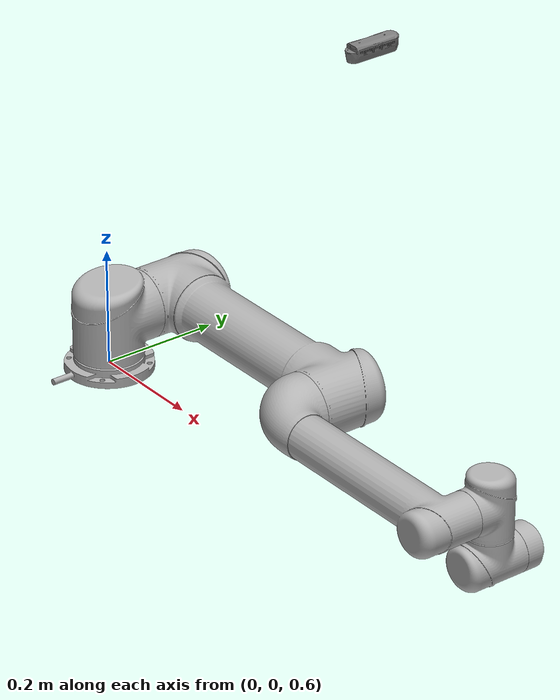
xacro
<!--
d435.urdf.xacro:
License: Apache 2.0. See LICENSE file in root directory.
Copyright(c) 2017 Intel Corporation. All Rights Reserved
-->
<?xml version="1.0"?>
<robot xmlns:xacro="http://www.ros.org/wiki/xacro"
       name="ur5" >
  <xacro:arg name="hardwareInterface" default="PositionJointInterface" />

  <!-- common stuff -->
  <xacro:include filename="$(find ur5_description)/urdf/common.gazebo.xacro" />

  <!-- ur5 -->
  <xacro:include filename="$(find ur5_description)/urdf/ur5.urdf.xacro" />

  <!-- arm -->
  <xacro:ur5_robot prefix="" joint_limited="true"
                   hardwareInterface="$(arg hardwareInterface)"/>

  <!-- camera -->
  <xacro:include filename="$(find ur5_description)/urdf/d435.urdf.xacro" />

  <link name="world" />

  <joint name="world_joint" type="fixed">
    <parent link="world" />
    <child link = "base_link" />
    <origin xyz="0.0 0.0 0.594" rpy="0.0 0.0 0.0" />
  </joint>

  <!-- Camera Link -->
  <sensor_d435 name="camera" topics_ns="camera" parent="world" >
    <origin xyz="0.65 0.0 1.4" rpy="0 1.575796 0"/>
  </sensor_d435>

</robot>

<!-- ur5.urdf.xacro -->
<robot xmlns:xacro="http://www.ros.org/wiki/xacro">

  <xacro:include filename="$(find ur5_description)/urdf/ur.transmission.xacro" />
  <xacro:include filename="$(find ur5_description)/urdf/ur.gazebo.xacro" />

  <!-- Inertia parameters -->
  <xacro:property name="base_mass" value="4.0" />  <!-- This mass might be incorrect -->
  <xacro:property name="shoulder_mass" value="3.7000" />
  <xacro:property name="upper_arm_mass" value="8.3930" />
  <xacro:property name="forearm_mass" value="2.2750" />
  <xacro:property name="wrist_1_mass" value="1.2190" />
  <xacro:property name="wrist_2_mass" value="1.2190" />
  <xacro:property name="wrist_3_mass" value="0.1879" />

  <xacro:property name="shoulder_cog" value="0.0 0.00193 -0.02561" />
  <xacro:property name="upper_arm_cog" value="0.0 -0.024201 0.2125" />
  <xacro:property name="forearm_cog" value="0.0 0.0265 0.11993" />
  <xacro:property name="wrist_1_cog" value="0.0 0.110949 0.01634" />
  <xacro:property name="wrist_2_cog" value="0.0 0.0018 0.11099" />
  <xacro:property name="wrist_3_cog" value="0.0 0.001159 0.0" />

  <!-- Kinematic model -->
  <!-- Properties from urcontrol.conf -->
  <xacro:property name="ur5_d1" value="0.089159" />
  <xacro:property name="ur5_a2" value="-0.42500" />
  <xacro:property name="ur5_a3" value="-0.39225" />
  <xacro:property name="ur5_d4" value="0.10915" />
  <xacro:property name="ur5_d5" value="0.09465" />
  <xacro:property name="ur5_d6" value="0.0823" />

  <!-- Arbitrary offsets for shoulder/elbow joints -->
  <xacro:property name="shoulder_offset" value="0.13585" />  <!-- measured from model -->
  <xacro:property name="elbow_offset" value="-0.1197" /> <!-- measured from model -->

  <!-- link lengths used in model -->
  <xacro:property name="shoulder_height" value="${ur5_d1}" />
  <xacro:property name="upper_arm_length" value="${-ur5_a2}" />
  <xacro:property name="forearm_length" value="${-ur5_a3}" />
  <xacro:property name="wrist_1_length" value="${ur5_d4 - elbow_offset - shoulder_offset}" />
  <xacro:property name="wrist_2_length" value="${ur5_d5}" />
  <xacro:property name="wrist_3_length" value="${ur5_d6}" />
  <!--property name="shoulder_height" value="0.089159" /-->
  <!--property name="shoulder_offset" value="0.13585" /-->  <!-- shoulder_offset - elbow_offset + wrist_1_length = 0.10915 -->
  <!--property name="upper_arm_length" value="0.42500" /-->
  <!--property name="elbow_offset" value="0.1197" /-->       <!-- CAD measured -->
  <!--property name="forearm_length" value="0.39225" /-->
  <!--property name="wrist_1_length" value="0.093" /-->     <!-- CAD measured -->
  <!--property name="wrist_2_length" value="0.09465" /-->   <!-- In CAD this distance is 0.930, but in the spec it is 0.09465 -->
  <!--property name="wrist_3_length" value="0.0823" /-->

  <xacro:property name="shoulder_radius" value="0.060" />   <!-- manually measured -->
  <xacro:property name="upper_arm_radius" value="0.054" />  <!-- manually measured -->
  <xacro:property name="elbow_radius" value="0.060" />      <!-- manually measured -->
  <xacro:property name="forearm_radius" value="0.040" />    <!-- manually measured -->
  <xacro:property name="wrist_radius" value="0.045" />      <!-- manually measured -->

  <xacro:macro name="cylinder_inertial" params="radius length mass *origin">
    <inertial>
      <mass value="${mass}" />
      <xacro:insert_block name="origin" />
      <inertia ixx="${0.0833333 * mass * (3 * radius * radius + length * length)}" ixy="0.0" ixz="0.0"
        iyy="${0.0833333 * mass * (3 * radius * radius + length * length)}" iyz="0.0"
        izz="${0.5 * mass * radius * radius}" />
    </inertial>
  </xacro:macro>

  <xacro:macro name="ur5_robot" params="prefix joint_limited hardwareInterface">

    <link name="${prefix}base_link" >
      <visual>
        <geometry>
          <mesh filename="package://ur5_description/meshes/ur5/visual/base.dae" />
        </geometry>
        <material name="LightGrey">
          <color rgba="0.7 0.7 0.7 1.0"/>
        </material>
      </visual>
      <collision>
        <geometry>
          <mesh filename="package://ur5_description/meshes/ur5/collision/base.stl" />
        </geometry>
      </collision>
      <xacro:cylinder_inertial radius="0.06" length="0.05" mass="${base_mass}">
        <origin xyz="0.0 0.0 0.0" rpy="0 0 0" />
      </xacro:cylinder_inertial>
    </link>

    <joint name="${prefix}shoulder_pan_joint" type="revolute">
      <parent link="${prefix}base_link" />
      <child link = "${prefix}shoulder_link" />
      <origin xyz="0.0 0.0 ${shoulder_height}" rpy="0.0 0.0 0.0" />
      <axis xyz="0 0 1" />
      <xacro:unless value="${joint_limited}">
        <limit lower="${-2.0 * pi}" upper="${2.0 * pi}" effort="150.0" velocity="3.15"/>
      </xacro:unless>
      <xacro:if value="${joint_limited}">
        <limit lower="${-pi}" upper="${pi}" effort="1500.0" velocity="30.15"/>
      </xacro:if>
      <dynamics damping="0.0" friction="0.0"/>
    </joint>

    <link name="${prefix}shoulder_link">
      <visual>
        <geometry>
          <mesh filename="package://ur5_description/meshes/ur5/visual/shoulder.dae" />
        </geometry>
        <material name="LightGrey">
          <color rgba="0.7 0.7 0.7 1.0"/>
        </material>
      </visual>
      <collision>
        <geometry>
          <mesh filename="package://ur5_description/meshes/ur5/collision/shoulder.stl" />
        </geometry>
      </collision>
      <xacro:cylinder_inertial radius="0.06" length="0.15" mass="${shoulder_mass}">
        <origin xyz="0.0 0.0 0.0" rpy="0 0 0" />
      </xacro:cylinder_inertial>
    </link>

    <joint name="${prefix}shoulder_lift_joint" type="revolute">
      <parent link="${prefix}shoulder_link" />
      <child link = "${prefix}upper_arm_link" />
      <origin xyz="0.0 ${shoulder_offset} 0.0" rpy="0.0 ${pi / 2.0} 0.0" />
      <axis xyz="0 1 0" />
      <xacro:unless value="${joint_limited}">
        <limit lower="${-2.0 * pi}" upper="${2.0 * pi}" effort="150.0" velocity="3.15"/>
      </xacro:unless>
      <xacro:if value="${joint_limited}">
        <limit lower="${-pi}" upper="${pi}" effort="150.0" velocity="3.15"/>
      </xacro:if>
      <dynamics damping="0.0" friction="0.0"/>
    </joint>

    <link name="${prefix}upper_arm_link">
      <visual>
        <geometry>
          <mesh filename="package://ur5_description/meshes/ur5/visual/upperarm.dae" />
        </geometry>
        <material name="LightGrey">
          <color rgba="0.7 0.7 0.7 1.0"/>
        </material>
      </visual>
      <collision>
        <geometry>
          <mesh filename="package://ur5_description/meshes/ur5/collision/upperarm.stl" />
        </geometry>
      </collision>
      <xacro:cylinder_inertial radius="0.06" length="0.56" mass="${upper_arm_mass}">
        <origin xyz="0.0 0.0 0.28" rpy="0 0 0" />
      </xacro:cylinder_inertial>
    </link>

    <joint name="${prefix}elbow_joint" type="revolute">
      <parent link="${prefix}upper_arm_link" />
      <child link = "${prefix}forearm_link" />
      <origin xyz="0.0 ${elbow_offset} ${upper_arm_length}" rpy="0.0 0.0 0.0" />
      <axis xyz="0 1 0" />
      <xacro:unless value="${joint_limited}">
        <limit lower="${-pi}" upper="${pi}" effort="150.0" velocity="3.15"/>
      </xacro:unless>
      <xacro:if value="${joint_limited}">
        <limit lower="${-pi}" upper="${pi}" effort="150.0" velocity="3.15"/>
      </xacro:if>
      <dynamics damping="0.0" friction="0.0"/>
    </joint>

    <link name="${prefix}forearm_link">
      <visual>
        <geometry>
          <mesh filename="package://ur5_description/meshes/ur5/visual/forearm.dae" />
        </geometry>
        <material name="LightGrey">
          <color rgba="0.7 0.7 0.7 1.0"/>
        </material>
      </visual>
      <collision>
        <geometry>
          <mesh filename="package://ur5_description/meshes/ur5/collision/forearm.stl" />
        </geometry>
      </collision>
      <xacro:cylinder_inertial radius="0.06" length="0.5" mass="${forearm_mass}">
        <origin xyz="0.0 0.0 0.25" rpy="0 0 0" />
      </xacro:cylinder_inertial>
    </link>

    <joint name="${prefix}wrist_1_joint" type="revolute">
      <parent link="${prefix}forearm_link" />
      <child link = "${prefix}wrist_1_link" />
      <origin xyz="0.0 0.0 ${forearm_length}" rpy="0.0 ${pi / 2.0} 0.0" />
      <axis xyz="0 1 0" />
      <xacro:unless value="${joint_limited}">
        <limit lower="${-2.0 * pi}" upper="${2.0 * pi}" effort="28.0" velocity="3.2"/>
      </xacro:unless>
      <xacro:if value="${joint_limited}">
        <limit lower="${-pi}" upper="${pi}" effort="28.0" velocity="3.2"/>
      </xacro:if>
      <dynamics damping="0.0" friction="0.0"/>
    </joint>

    <link name="${prefix}wrist_1_link">
      <visual>
        <geometry>
          <mesh filename="package://ur5_description/meshes/ur5/visual/wrist1.dae" />
        </geometry>
        <material name="LightGrey">
          <color rgba="0.7 0.7 0.7 1.0"/>
        </material>
      </visual>
      <collision>
        <geometry>
          <mesh filename="package://ur5_description/meshes/ur5/collision/wrist1.stl" />
        </geometry>
      </collision>
      <xacro:cylinder_inertial radius="0.6" length="0.12" mass="${wrist_1_mass}">
        <origin xyz="0.0 0.0 0.0" rpy="0 0 0" />
      </xacro:cylinder_inertial>
    </link>

    <joint name="${prefix}wrist_2_joint" type="revolute">
      <parent link="${prefix}wrist_1_link" />
      <child link = "${prefix}wrist_2_link" />
      <origin xyz="0.0 ${wrist_1_length} 0.0" rpy="0.0 0.0 0.0" />
      <axis xyz="0 0 1" />
      <xacro:unless value="${joint_limited}">
        <limit lower="${-2.0 * pi}" upper="${2.0 * pi}" effort="28.0" velocity="3.2"/>
      </xacro:unless>
      <xacro:if value="${joint_limited}">
        <limit lower="${-pi}" upper="${pi}" effort="28.0" velocity="3.2"/>
      </xacro:if>
      <dynamics damping="0.0" friction="0.0"/>
    </joint>

    <link name="${prefix}wrist_2_link">
      <visual>
        <geometry>
          <mesh filename="package://ur5_description/meshes/ur5/visual/wrist2.dae" />
        </geometry>
        <material name="LightGrey">
          <color rgba="0.7 0.7 0.7 1.0"/>
        </material>
      </visual>
      <collision>
        <geometry>
          <mesh filename="package://ur5_description/meshes/ur5/collision/wrist2.stl" />
        </geometry>
      </collision>
      <xacro:cylinder_inertial radius="0.6" length="0.12" mass="${wrist_2_mass}">
        <origin xyz="0.0 0.0 0.0" rpy="0 0 0" />
      </xacro:cylinder_inertial>
    </link>

    <joint name="${prefix}wrist_3_joint" type="revolute">
      <parent link="${prefix}wrist_2_link" />
      <child link = "${prefix}wrist_3_link" />
      <origin xyz="0.0 0.0 ${wrist_2_length}" rpy="0.0 0.0 0.0" />
      <axis xyz="0 1 0" />
      <xacro:unless value="${joint_limited}">
        <limit lower="${-2.0 * pi}" upper="${2.0 * pi}" effort="28.0" velocity="3.2"/>
      </xacro:unless>
      <xacro:if value="${joint_limited}">
        <limit lower="${-pi}" upper="${pi}" effort="28.0" velocity="3.2"/>
      </xacro:if>
      <dynamics damping="0.0" friction="0.0"/>
    </joint>

    <link name="${prefix}wrist_3_link">
      <visual>
        <geometry>
          <mesh filename="package://ur5_description/meshes/ur5/visual/wrist3.dae" />
        </geometry>
        <material name="LightGrey">
          <color rgba="0.7 0.7 0.7 1.0"/>
        </material>
      </visual>
      <collision>
        <geometry>
          <mesh filename="package://ur5_description/meshes/ur5/collision/wrist3.stl" />
        </geometry>
      </collision>
      <xacro:cylinder_inertial radius="0.6" length="0.12" mass="${wrist_3_mass}">
        <origin xyz="0.0 0.0 0.0" rpy="0 0 0" />
      </xacro:cylinder_inertial>
    </link>

    <joint name="${prefix}ee_fixed_joint" type="fixed">
      <parent link="${prefix}wrist_3_link" />
      <child link = "${prefix}ee_link" />
      <origin xyz="0.0 ${wrist_3_length} 0.0" rpy="0.0 0.0 ${pi/2.0}" />
    </joint>

    <link name="${prefix}ee_link">
      <collision>
        <geometry>
          <box size="0.01 0.01 0.01"/>
        </geometry>
        <origin rpy="0 0 0" xyz="-0.01 0 0"/>
      </collision>
    </link>

    <xacro:ur_arm_transmission prefix="${prefix}" hardwareInterface="${hardwareInterface}" />
    <xacro:ur_arm_gazebo prefix="${prefix}" />

    <!-- ROS base_link to UR 'Base' Coordinates transform -->
    <link name="${prefix}base"/>
    <joint name="${prefix}base_link-base_fixed_joint" type="fixed">
      <!-- NOTE: this rotation is only needed as long as base_link itself is
                 not corrected wrt the real robot (ie: rotated over 180
                 degrees)
      -->
      <origin xyz="0 0 0" rpy="0 0 ${-pi}"/>
      <parent link="${prefix}base_link"/>
      <child link="${prefix}base"/>
    </joint>

    <!-- Frame coincident with all-zeros TCP on UR controller -->
    <link name="${prefix}tool0"/>
    <joint name="${prefix}wrist_3_link-tool0_fixed_joint" type="fixed">
      <origin xyz="0 ${wrist_3_length} 0" rpy="${pi/-2.0} 0 0"/>
      <parent link="${prefix}wrist_3_link"/>
      <child link="${prefix}tool0"/>
    </joint>

  </xacro:macro>
</robot>

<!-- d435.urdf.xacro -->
<robot name="sensor_d435" xmlns:xacro="http://ros.org/wiki/xacro">
  <!--File includes-->
  <xacro:include filename="$(find ur5_description)/urdf/d435.gazebo.xacro"/>

  <xacro:macro name="sensor_d435" params="name:=camera topics_ns:=camera parent *origin publish_pointcloud:=true">
    <xacro:property name="M_PI" value="3.1415926535897931" />

    <!-- The following values are approximate, and the camera node
     publishing TF values with actual calibrated camera extrinsic values -->
    <xacro:property name="d435_cam_depth_to_left_ir_offset" value="0.0"/>
    <xacro:property name="d435_cam_depth_to_right_ir_offset" value="-0.050"/>
    <xacro:property name="d435_cam_depth_to_color_offset" value="0.015"/>

    <!-- The following values model the aluminum peripherial case for the
    D435 camera, with the camera joint represented by the actual
    peripherial camera tripod mount -->
    <xacro:property name="d435_cam_width" value="0.090"/>
    <xacro:property name="d435_cam_height" value="0.025"/>
    <xacro:property name="d435_cam_depth" value="0.02505"/>
    <xacro:property name="d435_cam_mount_from_center_offset" value="0.0149"/>

    <!-- The following offset is relative the the physical D435 camera peripherial
    camera tripod mount -->
    <xacro:property name="d435_cam_depth_px" value="${d435_cam_mount_from_center_offset}"/>
    <xacro:property name="d435_cam_depth_py" value="0.0175"/>
    <xacro:property name="d435_cam_depth_pz" value="${d435_cam_height/2}"/>

    <material name="${name}_aluminum">
    <color rgba="0.5 0.5 0.5 1"/>
    </material>

    <!-- camera body, with origin at bottom screw mount -->
    <joint name="${name}_joint" type="fixed">
      <xacro:insert_block name="origin" />
      <parent link="${parent}"/>
      <child link="${name}_bottom_screw_frame" />
    </joint>
    <link name="${name}_bottom_screw_frame"/>

    <joint name="${name}_link_joint" type="fixed">
      <origin xyz="0 ${d435_cam_depth_py} ${d435_cam_depth_pz}" rpy="0 0 0"/>
      <parent link="${name}_bottom_screw_frame"/>
      <child link="${name}_link" />
    </joint>

    <link name="${name}_link">
      <visual>
      <origin xyz="${d435_cam_mount_from_center_offset} ${-d435_cam_depth_py} 0" rpy="${M_PI/2} 0 ${M_PI/2}"/>
        <geometry>
          <mesh filename="package://realsense2_description/meshes/d435.dae" />
        </geometry>
        <material name="${name}_aluminum"/>
      </visual>
      <collision>
        <origin xyz="0 ${-d435_cam_depth_py} 0" rpy="0 0 0"/>
        <geometry>
        <box size="${d435_cam_depth} ${d435_cam_width} ${d435_cam_height}"/>
        </geometry>
      </collision>
      <inertial>
        <!-- The following are not reliable values, and should not be used for modeling -->
        <mass value="0.564" />
        <origin xyz="0 0 0" />
        <inertia ixx="0.003881243" ixy="0.0" ixz="0.0" iyy="0.000498940" iyz="0.0" izz="0.003879257" />
      </inertial>
    </link>

    <!-- camera depth joints and links -->
    <joint name="${name}_depth_joint" type="fixed">
      <origin xyz="0 0 0" rpy="0 0 0"/>
      <parent link="${name}_link"/>
      <child link="${name}_depth_frame" />
    </joint>
    <link name="${name}_depth_frame"/>

    <joint name="${name}_depth_optical_joint" type="fixed">
      <origin xyz="0 0 0" rpy="${-M_PI/2} 0 ${-M_PI/2}" />
      <parent link="${name}_depth_frame" />
      <child link="${name}_depth_optical_frame" />
    </joint>
    <link name="${name}_depth_optical_frame"/>

    <!-- camera left IR joints and links -->
    <joint name="${name}_left_ir_joint" type="fixed">
      <origin xyz="0 ${d435_cam_depth_to_left_ir_offset} 0" rpy="0 0 0" />
      <parent link="${name}_depth_frame" />
      <child link="${name}_left_ir_frame" />
    </joint>
    <link name="${name}_left_ir_frame"/>

    <joint name="${name}_left_ir_optical_joint" type="fixed">
      <origin xyz="0 0 0" rpy="${-M_PI/2} 0 ${-M_PI/2}" />
      <parent link="${name}_left_ir_frame" />
      <child link="${name}_left_ir_optical_frame" />
    </joint>
    <link name="${name}_left_ir_optical_frame"/>

    <!-- camera right IR joints and links -->
    <joint name="${name}_right_ir_joint" type="fixed">
      <origin xyz="0 ${d435_cam_depth_to_right_ir_offset} 0" rpy="0 0 0" />
      <parent link="${name}_depth_frame" />
      <child link="${name}_right_ir_frame" />
    </joint>
    <link name="${name}_right_ir_frame"/>

    <joint name="${name}_right_ir_optical_joint" type="fixed">
      <origin xyz="0 0 0" rpy="${-M_PI/2} 0 ${-M_PI/2}" />
      <parent link="${name}_right_ir_frame" />
      <child link="${name}_right_ir_optical_frame" />
    </joint>
    <link name="${name}_right_ir_optical_frame"/>

    <!-- camera color joints and links -->
    <joint name="${name}_color_joint" type="fixed">
      <origin xyz="0 ${d435_cam_depth_to_color_offset} 0" rpy="0 0 0" />
      <parent link="${name}_depth_frame" />
      <child link="${name}_color_frame" />
    </joint>
    <link name="${name}_color_frame"/>

    <joint name="${name}_color_optical_joint" type="fixed">
      <origin xyz="0 0 0" rpy="${-M_PI/2} 0 ${-M_PI/2}" />
      <parent link="${name}_color_frame" />
      <child link="${name}_color_optical_frame" />
    </joint>
    <link name="${name}_color_optical_frame"/>

    <!-- Realsense Gazebo Plugin -->
    <xacro:gazebo_d435 camera_name="${name}" reference_link="${name}_link" topics_ns="${topics_ns}" depth_optical_frame="${name}_depth_optical_frame" color_optical_frame="${name}_color_optical_frame" infrared1_optical_frame="${name}_left_ir_optical_frame" infrared2_optical_frame="${name}_right_ir_optical_frame" publish_pointcloud="${publish_pointcloud}"/>

  </xacro:macro>
</robot>
